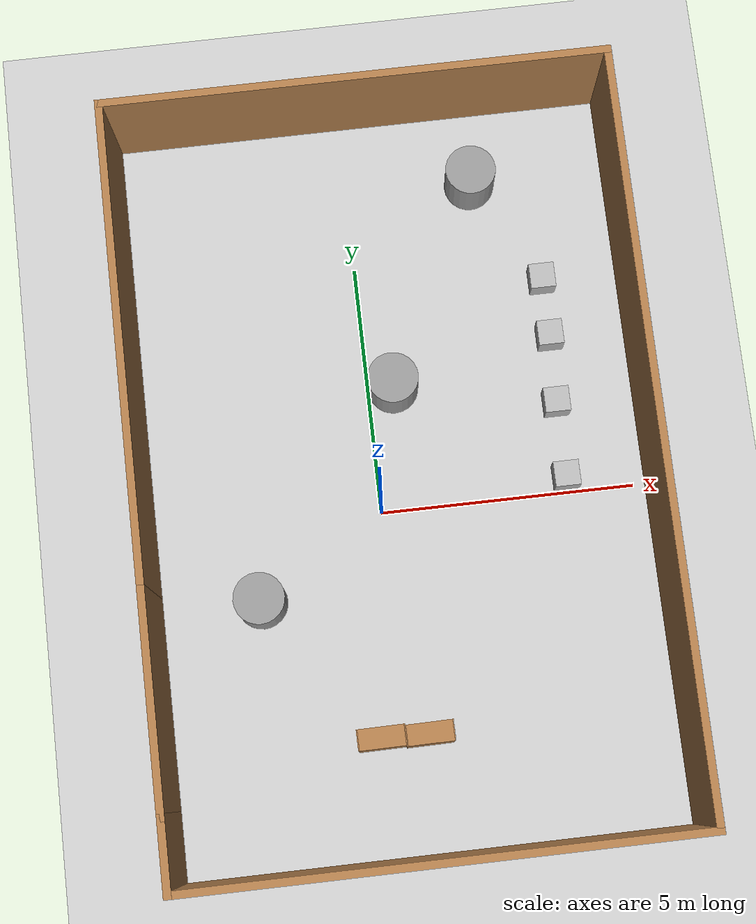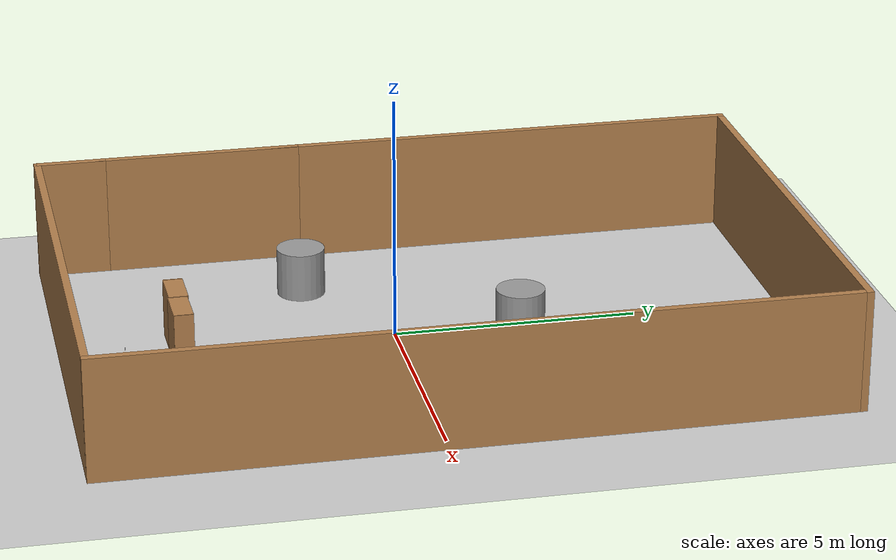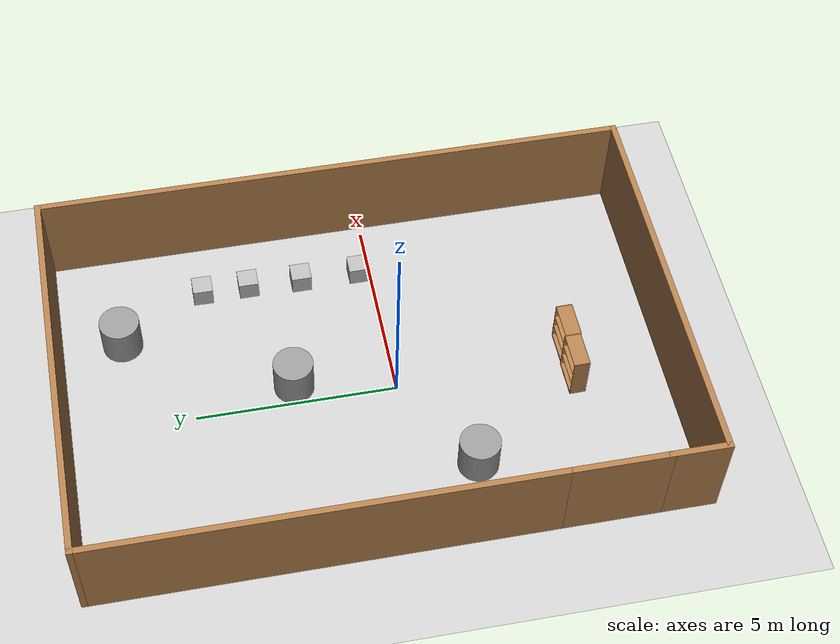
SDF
<sdf version="1.6">
 <world name="default">
  <model name="ground_plane">
   <static>1</static>
   <link name="link">
    <collision name="collision">
     <geometry><plane><normal>0 0 1</normal><size>100 100</size></plane></geometry>
     <surface><friction><ode><mu>100</mu><mu2>50</mu2></ode></friction></surface>
    </collision>
    <visual name="visual">
     <cast_shadows>0</cast_shadows>
     <geometry><plane><normal>0 0 1</normal><size>100 100</size></plane></geometry>
     <material>
      <script><uri>file://media/materials/scripts/gazebo.material</uri><name>Gazebo/Grey</name></script>
     </material>
    </visual>
   </link>
  </model>
  <light name="sun" type="directional">
   <pose>0 0 10 0 -0 0</pose>
   <diffuse>0.8 0.8 0.8 1</diffuse>
   <specular>0.2 0.2 0.2 1</specular>
   <attenuation>
    <range>1000</range>
    <constant>0.9</constant>
    <linear>0.01</linear>
    <quadratic>0.001</quadratic>
   </attenuation>
   <direction>-0.5 0.1 -0.9</direction>
  </light>
  <gravity>0 0 -9.8</gravity>
  <magnetic_field>6e-06 2.3e-05 -4.2e-05</magnetic_field>
  <atmosphere type="adiabatic"/>
  <physics name="default_physics" default="0" type="ode">
   <max_step_size>0.001</max_step_size>
   <real_time_factor>1</real_time_factor>
   <real_time_update_rate>1000</real_time_update_rate>
  </physics>
  <scene><ambient>0.4 0.4 0.4 1</ambient><background>0.7 0.7 0.7 1</background><shadows>1</shadows></scene>
  <spherical_coordinates>
   <surface_model>EARTH_WGS84</surface_model>
   <latitude_deg>0</latitude_deg>
   <longitude_deg>0</longitude_deg>
   <elevation>0</elevation>
   <heading_deg>0</heading_deg>
  </spherical_coordinates>
  <model name="QR1_clone_clone">
   <static>1</static>
   <link name="link">
    <collision name="collision">
     <geometry><mesh><uri>model://QR1/meshes/QR1.dae</uri></mesh></geometry>
    </collision>
    <visual name="visual"><geometry><mesh><uri>model://QR1/meshes/QR1.dae</uri></mesh></geometry></visual>
   </link>
   <pose>3.72027 4.35965 0.25 1.58245 -0 0</pose>
  </model>
  <model name="metal_peg">
   <link name="link">
    <pose>0 0 0.031 0 -0 0</pose>
    <inertial>
     <mass>0.0121</mass>
     <inertia>
      <ixx>3.90898e-06</ixx>
      <ixy>0</ixy>
      <ixz>0</ixz>
      <iyy>3.90898e-06</iyy>
      <iyz>0</iyz>
      <izz>6.58845e-08</izz>
     </inertia>
    </inertial>
    <collision name="collision">
     <geometry><cylinder><radius>0.0033</radius><length>0.062</length></cylinder></geometry>
     <surface>
      <contact>
       <poissons_ratio>0.305</poissons_ratio>
       <elastic_modulus>2e+11</elastic_modulus>
       <ode><kp>100000</kp><kd>100</kd><max_vel>100</max_vel><min_depth>0.001</min_depth></ode>
      </contact>
      <friction>
       <torsional>
        <coefficient>1</coefficient>
        <use_patch_radius>0</use_patch_radius>
        <surface_radius>0.01</surface_radius>
       </torsional>
      </friction>
     </surface>
    </collision>
    <visual name="visual">
     <geometry><cylinder><radius>0.0033</radius><length>0.062</length></cylinder></geometry>
     <material>
      <script><uri>file://media/materials/scripts/gazebo.material</uri><name>Gazebo/Grey</name></script>
     </material>
    </visual>
   </link>
   <pose>-0.330559 -5.45704 -0.001 -5e-06 5e-06 -1e-06</pose>
  </model>
  <model name="unit_cylinder">
   <pose>-2.51954 -1.51033 0.499993 -4e-06 -2e-06 -0</pose>
   <link name="link">
    <inertial>
     <mass>1</mass>
     <inertia><ixx>0.145833</ixx><ixy>0</ixy><ixz>0</ixz><iyy>0.145833</iyy><iyz>0</iyz><izz>0.125</izz></inertia>
    </inertial>
    <collision name="collision">
     <geometry><cylinder><radius>0.5</radius><length>1</length></cylinder></geometry>
    </collision>
    <visual name="visual">
     <geometry><cylinder><radius>0.5</radius><length>1</length></cylinder></geometry>
     <material>
      <script><name>Gazebo/Grey</name><uri>file://media/materials/scripts/gazebo.material</uri></script>
     </material>
    </visual>
   </link>
  </model>
  <model name="unit_cylinder_clone">
   <pose>0.502725 2.48836 0.499996 4e-06 2e-06 -0</pose>
   <link name="link">
    <inertial>
     <mass>1</mass>
     <inertia><ixx>0.145833</ixx><ixy>0</ixy><ixz>0</ixz><iyy>0.145833</iyy><iyz>0</iyz><izz>0.125</izz></inertia>
    </inertial>
    <collision name="collision">
     <geometry><cylinder><radius>0.5</radius><length>1</length></cylinder></geometry>
    </collision>
    <visual name="visual">
     <geometry><cylinder><radius>0.5</radius><length>1</length></cylinder></geometry>
     <material>
      <script><name>Gazebo/Grey</name><uri>file://media/materials/scripts/gazebo.material</uri></script>
     </material>
    </visual>
   </link>
  </model>
  <model name="walls_0">
   <pose>0.38719 0.69897 0 0 -0 0</pose>
   <link name="Wall_1">
    <collision name="Wall_1_Collision">
     <geometry><box><size>4.25 0.15 2.5</size></box></geometry>
     <pose>0 0 1.25 0 -0 0</pose>
    </collision>
    <visual name="Wall_1_Visual">
     <pose>0 0 1.25 0 -0 0</pose>
     <geometry><box><size>4.25 0.15 2.5</size></box></geometry>
     <material>
      <script><uri>file://media/materials/scripts/gazebo.material</uri><name>Gazebo/Wood</name></script>
      <ambient>1 1 1 1</ambient>
     </material>
     <meta><layer>0</layer></meta>
    </visual>
    <pose>-4.925 -4.025 0 0 0 -1.5708</pose>
   </link>
   <link name="Wall_2">
    <collision name="Wall_2_Collision">
     <geometry><box><size>1.5 0.15 2.5</size></box></geometry>
     <pose>0 0 1.25 0 -0 0</pose>
    </collision>
    <visual name="Wall_2_Visual">
     <pose>0 0 1.25 0 -0 0</pose>
     <geometry><box><size>1.5 0.15 2.5</size></box></geometry>
     <material>
      <script><uri>file://media/materials/scripts/gazebo.material</uri><name>Gazebo/Wood</name></script>
      <ambient>1 1 1 1</ambient>
     </material>
     <meta><layer>0</layer></meta>
    </visual>
    <pose>-4.925 -6.75 0 0 0 -1.5708</pose>
   </link>
   <link name="Wall_3">
    <collision name="Wall_3_Collision">
     <geometry><box><size>10 0.15 2.5</size></box></geometry>
     <pose>0 0 1.25 0 -0 0</pose>
    </collision>
    <visual name="Wall_3_Visual">
     <pose>0 0 1.25 0 -0 0</pose>
     <geometry><box><size>10 0.15 2.5</size></box></geometry>
     <material>
      <script><uri>file://media/materials/scripts/gazebo.material</uri><name>Gazebo/Wood</name></script>
      <ambient>1 1 1 1</ambient>
     </material>
     <meta><layer>0</layer></meta>
    </visual>
    <pose>0 -7.425 0 0 -0 0</pose>
   </link>
   <link name="Wall_4">
    <collision name="Wall_4_Collision">
     <geometry><box><size>15 0.15 2.5</size></box></geometry>
     <pose>0 0 1.25 0 -0 0</pose>
    </collision>
    <visual name="Wall_4_Visual">
     <pose>0 0 1.25 0 -0 0</pose>
     <geometry><box><size>15 0.15 2.5</size></box></geometry>
     <material>
      <script><uri>file://media/materials/scripts/gazebo.material</uri><name>Gazebo/Wood</name></script>
      <ambient>1 1 1 1</ambient>
     </material>
     <meta><layer>0</layer></meta>
    </visual>
    <pose>4.925 0 0 0 -0 1.5708</pose>
   </link>
   <link name="Wall_5">
    <collision name="Wall_5_Collision">
     <geometry><box><size>10 0.15 2.5</size></box></geometry>
     <pose>0 0 1.25 0 -0 0</pose>
    </collision>
    <visual name="Wall_5_Visual">
     <pose>0 0 1.25 0 -0 0</pose>
     <geometry><box><size>10 0.15 2.5</size></box></geometry>
     <material>
      <script><uri>file://media/materials/scripts/gazebo.material</uri><name>Gazebo/Wood</name></script>
      <ambient>1 1 1 1</ambient>
     </material>
     <meta><layer>0</layer></meta>
    </visual>
    <pose>0 7.425 0 0 -0 3.14159</pose>
   </link>
   <link name="Wall_6">
    <collision name="Wall_6_Collision">
     <geometry><box><size>11.25 0.15 2.5</size></box></geometry>
     <pose>0 0 1.25 0 -0 0</pose>
    </collision>
    <visual name="Wall_6_Visual">
     <pose>0 0 1.25 0 -0 0</pose>
     <geometry><box><size>11.25 0.15 2.5</size></box></geometry>
     <material>
      <script><uri>file://media/materials/scripts/gazebo.material</uri><name>Gazebo/Wood</name></script>
      <ambient>1 1 1 1</ambient>
     </material>
     <meta><layer>0</layer></meta>
    </visual>
    <pose>-4.925 1.875 0 0 0 -1.5708</pose>
   </link>
   <static>1</static>
  </model>
  <model name="bookshelf">
   <static>1</static>
   <link name="link">
    <inertial><mass>1</mass></inertial>
    <collision name="back">
     <pose>0 0.005 0.6 0 -0 0</pose>
     <geometry><box><size>0.9 0.01 1.2</size></box></geometry>
    </collision>
    <visual name="visual1">
     <pose>0 0.005 0.6 0 -0 0</pose>
     <geometry><box><size>0.9 0.01 1.2</size></box></geometry>
     <material>
      <script><uri>file://media/materials/scripts/gazebo.material</uri><name>Gazebo/Wood</name></script>
     </material>
    </visual>
    <collision name="left_side">
     <pose>0.45 -0.195 0.6 0 -0 0</pose>
     <geometry><box><size>0.02 0.4 1.2</size></box></geometry>
    </collision>
    <visual name="visual2">
     <pose>0.45 -0.195 0.6 0 -0 0</pose>
     <geometry><box><size>0.02 0.4 1.2</size></box></geometry>
     <material>
      <script><uri>file://media/materials/scripts/gazebo.material</uri><name>Gazebo/Wood</name></script>
     </material>
    </visual>
    <collision name="right_side">
     <pose>-0.45 -0.195 0.6 0 -0 0</pose>
     <geometry><box><size>0.02 0.4 1.2</size></box></geometry>
    </collision>
    <visual name="visual3">
     <pose>-0.45 -0.195 0.6 0 -0 0</pose>
     <geometry><box><size>0.02 0.4 1.2</size></box></geometry>
     <material>
      <script><uri>file://media/materials/scripts/gazebo.material</uri><name>Gazebo/Wood</name></script>
     </material>
    </visual>
    <collision name="bottom">
     <pose>0 -0.195 0.03 0 -0 0</pose>
     <geometry><box><size>0.88 0.4 0.06</size></box></geometry>
    </collision>
    <visual name="visual4">
     <pose>0 -0.195 0.03 0 -0 0</pose>
     <geometry><box><size>0.88 0.4 0.06</size></box></geometry>
     <material>
      <script><uri>file://media/materials/scripts/gazebo.material</uri><name>Gazebo/Wood</name></script>
     </material>
    </visual>
    <collision name="top">
     <pose>0 -0.195 1.19 0 -0 0</pose>
     <geometry><box><size>0.88 0.4 0.02</size></box></geometry>
    </collision>
    <visual name="visual5">
     <pose>0 -0.195 1.19 0 -0 0</pose>
     <geometry><box><size>0.88 0.4 0.02</size></box></geometry>
     <material>
      <script><uri>file://media/materials/scripts/gazebo.material</uri><name>Gazebo/Wood</name></script>
     </material>
    </visual>
    <collision name="low_shelf">
     <pose>0 -0.195 0.43 0 -0 0</pose>
     <geometry><box><size>0.88 0.4 0.02</size></box></geometry>
    </collision>
    <visual name="visual6">
     <pose>0 -0.195 0.43 0 -0 0</pose>
     <geometry><box><size>0.88 0.4 0.02</size></box></geometry>
     <material>
      <script><uri>file://media/materials/scripts/gazebo.material</uri><name>Gazebo/Wood</name></script>
     </material>
    </visual>
    <collision name="high_shelf">
     <pose>0 -0.195 0.8 0 -0 0</pose>
     <geometry><box><size>0.88 0.4 0.02</size></box></geometry>
    </collision>
    <visual name="visual7">
     <pose>0 -0.195 0.8 0 -0 0</pose>
     <geometry><box><size>0.88 0.4 0.02</size></box></geometry>
     <material>
      <script><uri>file://media/materials/scripts/gazebo.material</uri><name>Gazebo/Wood</name></script>
     </material>
    </visual>
   </link>
   <pose>-0.487133 -4.57676 0 0 0 -3.13272</pose>
  </model>
  <model name="bookshelf_0">
   <static>1</static>
   <link name="link">
    <inertial><mass>1</mass></inertial>
    <collision name="back">
     <pose>0 0.005 0.6 0 -0 0</pose>
     <geometry><box><size>0.9 0.01 1.2</size></box></geometry>
    </collision>
    <visual name="visual1">
     <pose>0 0.005 0.6 0 -0 0</pose>
     <geometry><box><size>0.9 0.01 1.2</size></box></geometry>
     <material>
      <script><uri>file://media/materials/scripts/gazebo.material</uri><name>Gazebo/Wood</name></script>
     </material>
    </visual>
    <collision name="left_side">
     <pose>0.45 -0.195 0.6 0 -0 0</pose>
     <geometry><box><size>0.02 0.4 1.2</size></box></geometry>
    </collision>
    <visual name="visual2">
     <pose>0.45 -0.195 0.6 0 -0 0</pose>
     <geometry><box><size>0.02 0.4 1.2</size></box></geometry>
     <material>
      <script><uri>file://media/materials/scripts/gazebo.material</uri><name>Gazebo/Wood</name></script>
     </material>
    </visual>
    <collision name="right_side">
     <pose>-0.45 -0.195 0.6 0 -0 0</pose>
     <geometry><box><size>0.02 0.4 1.2</size></box></geometry>
    </collision>
    <visual name="visual3">
     <pose>-0.45 -0.195 0.6 0 -0 0</pose>
     <geometry><box><size>0.02 0.4 1.2</size></box></geometry>
     <material>
      <script><uri>file://media/materials/scripts/gazebo.material</uri><name>Gazebo/Wood</name></script>
     </material>
    </visual>
    <collision name="bottom">
     <pose>0 -0.195 0.03 0 -0 0</pose>
     <geometry><box><size>0.88 0.4 0.06</size></box></geometry>
    </collision>
    <visual name="visual4">
     <pose>0 -0.195 0.03 0 -0 0</pose>
     <geometry><box><size>0.88 0.4 0.06</size></box></geometry>
     <material>
      <script><uri>file://media/materials/scripts/gazebo.material</uri><name>Gazebo/Wood</name></script>
     </material>
    </visual>
    <collision name="top">
     <pose>0 -0.195 1.19 0 -0 0</pose>
     <geometry><box><size>0.88 0.4 0.02</size></box></geometry>
    </collision>
    <visual name="visual5">
     <pose>0 -0.195 1.19 0 -0 0</pose>
     <geometry><box><size>0.88 0.4 0.02</size></box></geometry>
     <material>
      <script><uri>file://media/materials/scripts/gazebo.material</uri><name>Gazebo/Wood</name></script>
     </material>
    </visual>
    <collision name="low_shelf">
     <pose>0 -0.195 0.43 0 -0 0</pose>
     <geometry><box><size>0.88 0.4 0.02</size></box></geometry>
    </collision>
    <visual name="visual6">
     <pose>0 -0.195 0.43 0 -0 0</pose>
     <geometry><box><size>0.88 0.4 0.02</size></box></geometry>
     <material>
      <script><uri>file://media/materials/scripts/gazebo.material</uri><name>Gazebo/Wood</name></script>
     </material>
    </visual>
    <collision name="high_shelf">
     <pose>0 -0.195 0.8 0 -0 0</pose>
     <geometry><box><size>0.88 0.4 0.02</size></box></geometry>
    </collision>
    <visual name="visual7">
     <pose>0 -0.195 0.8 0 -0 0</pose>
     <geometry><box><size>0.88 0.4 0.02</size></box></geometry>
     <material>
      <script><uri>file://media/materials/scripts/gazebo.material</uri><name>Gazebo/Wood</name></script>
     </material>
    </visual>
   </link>
   <pose>0.425175 -4.59339 0 0 0 -3.13003</pose>
  </model>
  <model name="unit_cylinder_clone_clone">
   <pose>2.52083 6.54098 0.499993 -4e-06 -2e-06 -0</pose>
   <link name="link">
    <inertial>
     <mass>1</mass>
     <inertia><ixx>0.145833</ixx><ixy>0</ixy><ixz>0</ixz><iyy>0.145833</iyy><iyz>0</iyz><izz>0.125</izz></inertia>
    </inertial>
    <collision name="collision">
     <geometry><cylinder><radius>0.5</radius><length>1</length></cylinder></geometry>
    </collision>
    <visual name="visual">
     <geometry><cylinder><radius>0.5</radius><length>1</length></cylinder></geometry>
     <material>
      <script><name>Gazebo/Grey</name><uri>file://media/materials/scripts/gazebo.material</uri></script>
     </material>
    </visual>
   </link>
  </model>
  <model name="QR2">
   <static>1</static>
   <link name="link">
    <collision name="collision">
     <geometry><mesh><uri>model://QR2/meshes/QR2.dae</uri></mesh></geometry>
    </collision>
    <visual name="visual"><geometry><mesh><uri>model://QR2/meshes/QR2.dae</uri></mesh></geometry></visual>
   </link>
   <pose>3.72973 3.17572 0.249379 1.5589 -0 0</pose>
  </model>
  <model name="QR3">
   <static>1</static>
   <link name="link">
    <collision name="collision">
     <geometry><mesh><uri>model://QR3/meshes/QR3.dae</uri></mesh></geometry>
    </collision>
    <visual name="visual"><geometry><mesh><uri>model://QR3/meshes/QR3.dae</uri></mesh></geometry></visual>
   </link>
   <pose>3.68512 1.80873 0.248164 1.57306 -0 0</pose>
  </model>
  <model name="QR4">
   <static>1</static>
   <link name="link">
    <collision name="collision">
     <geometry><mesh><uri>model://QR4/meshes/QR4.dae</uri></mesh></geometry>
    </collision>
    <visual name="visual"><geometry><mesh><uri>model://QR4/meshes/QR4.dae</uri></mesh></geometry></visual>
   </link>
   <pose>3.68683 0.30797 0.25316 1.55936 -0 0</pose>
  </model>
 </world>
</sdf>
